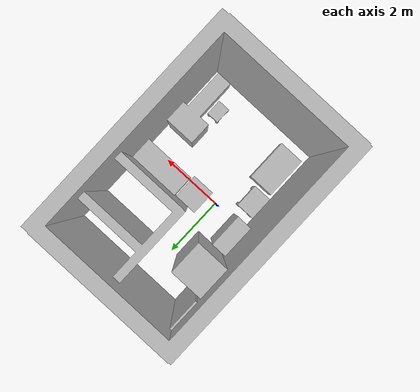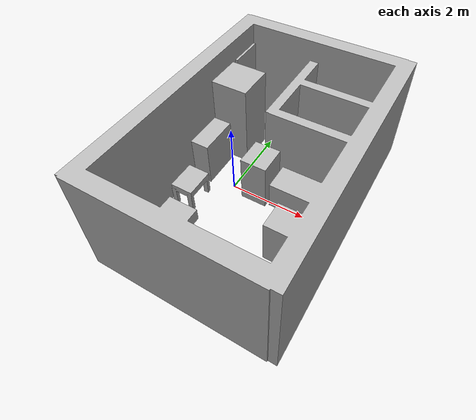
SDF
<?xml version="1.0"?>
<sdf version="1.7">
  <model name="house">
    <link name="link">
      <inertial>
        <mass>100.0</mass>
        <inertia>
          <ixx>0.083</ixx>
          <ixy>0.0</ixy>
          <ixz>0.0</ixz>
          <iyy>0.083</iyy>
          <iyz>0.0</iyz>
          <izz>0.083</izz>
        </inertia>
      </inertial>
      <collision name="collision">
        <pose>1 0 0 1.57 0 0</pose>
        <geometry>
          <mesh>
            <uri>model://house/bighouse.obj</uri>
          </mesh>
        </geometry>
      </collision>
      <visual name="visual">
        <pose>1 0 0 1.57 0 0</pose>
        <geometry>
          <mesh>
            <uri>model://house/bighouse.obj</uri>
          </mesh>
        </geometry>
      </visual>
    </link>
    <static>1</static>
  </model>
  <!-- TODO　SDF　IS＿STATIC　gazebo タグをつける -->
</sdf>
